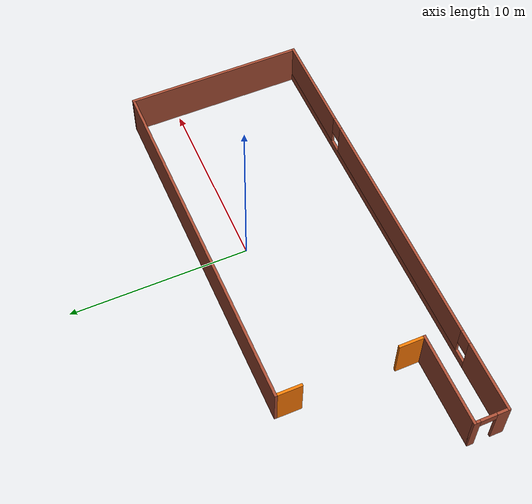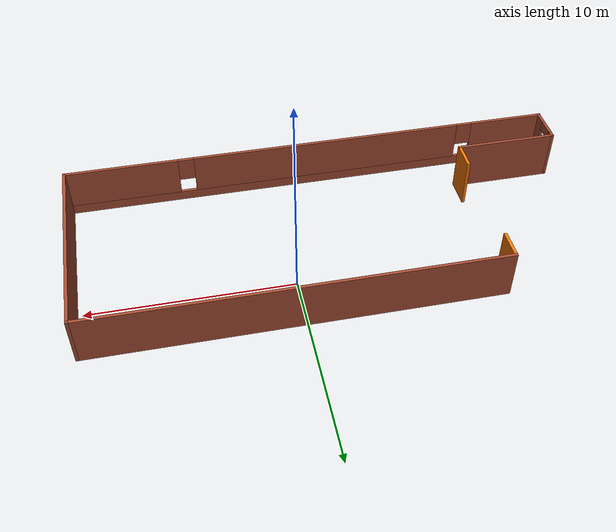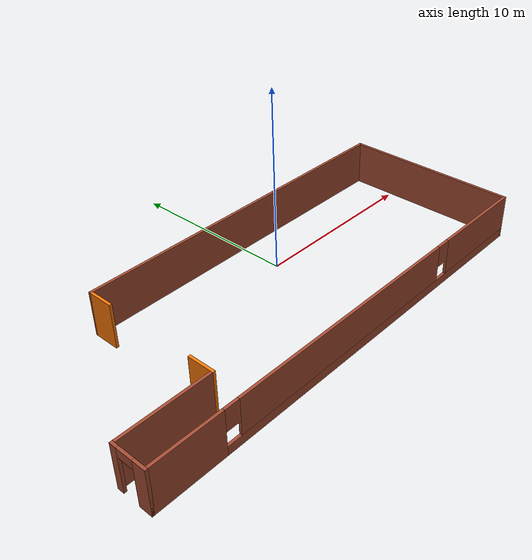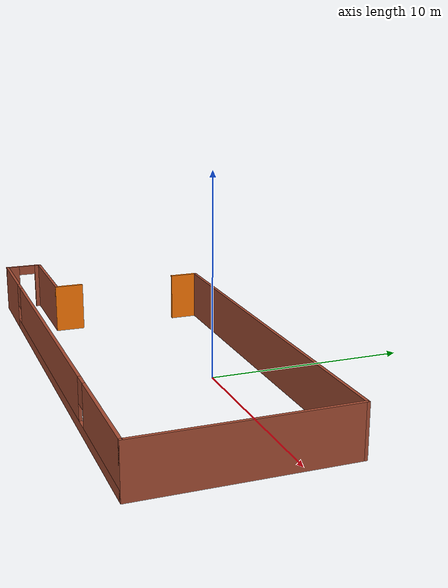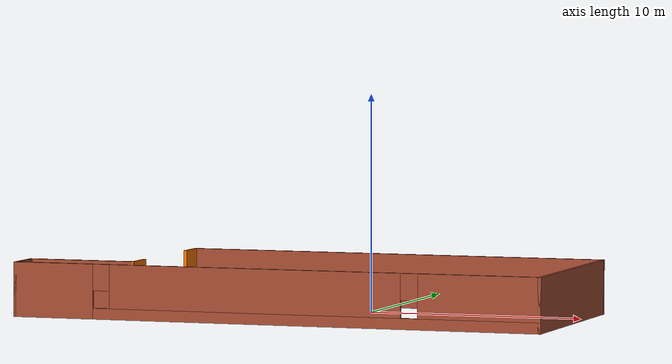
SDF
<?xml version='1.0'?>
<sdf version='1.7'>
  <model name='building'>
    <pose>-2.148 -2.399 0 0 -0 0</pose>
    <link name='Wall_0'>
      <pose>-1e-06 -4.925 0 0 -0 0</pose>
      <visual name='Wall_0_Visual_0'>
        <pose>-10.5687 0 1.25 0 -0 0</pose>
        <geometry>
          <box>
            <size>3.86253 0.15 2.5</size>
          </box>
        </geometry>
        <material>
          <script>
            <uri>file://media/materials/scripts/gazebo.material</uri>
            <name>Gazebo/Bricks</name>
          </script>
          <ambient>1 1 1 1</ambient>
        </material>
        <meta>
          <layer>0</layer>
        </meta>
      </visual>
      <collision name='Wall_0_Collision_0'>
        <geometry>
          <box>
            <size>3.86253 0.15 2.5</size>
          </box>
        </geometry>
        <pose>-10.5687 0 1.25 0 -0 0</pose>
      </collision>
      <visual name='Wall_0_Visual_1'>
        <pose>1.93126 0 0.25 0 -0 0</pose>
        <geometry>
          <box>
            <size>21.1375 0.15 0.5</size>
          </box>
        </geometry>
        <material>
          <script>
            <uri>file://media/materials/scripts/gazebo.material</uri>
            <name>Gazebo/Bricks</name>
          </script>
          <ambient>1 1 1 1</ambient>
        </material>
        <meta>
          <layer>0</layer>
        </meta>
      </visual>
      <collision name='Wall_0_Collision_1'>
        <geometry>
          <box>
            <size>21.1375 0.15 0.5</size>
          </box>
        </geometry>
        <pose>1.93126 0 0.25 0 -0 0</pose>
      </collision>
      <visual name='Wall_0_Visual_2'>
        <pose>-0.911973 0 1.5 0 -0 0</pose>
        <geometry>
          <box>
            <size>13.851 0.15 2</size>
          </box>
        </geometry>
        <material>
          <script>
            <uri>file://media/materials/scripts/gazebo.material</uri>
            <name>Gazebo/Bricks</name>
          </script>
          <ambient>1 1 1 1</ambient>
        </material>
        <meta>
          <layer>0</layer>
        </meta>
      </visual>
      <collision name='Wall_0_Collision_2'>
        <geometry>
          <box>
            <size>13.851 0.15 2</size>
          </box>
        </geometry>
        <pose>-0.911973 0 1.5 0 -0 0</pose>
      </collision>
      <visual name='Wall_0_Visual_3'>
        <pose>9.65676 0 1.5 0 -0 0</pose>
        <geometry>
          <box>
            <size>5.68647 0.15 2</size>
          </box>
        </geometry>
        <material>
          <script>
            <uri>file://media/materials/scripts/gazebo.material</uri>
            <name>Gazebo/Bricks</name>
          </script>
          <ambient>1 1 1 1</ambient>
        </material>
        <meta>
          <layer>0</layer>
        </meta>
      </visual>
      <collision name='Wall_0_Collision_3'>
        <geometry>
          <box>
            <size>5.68647 0.15 2</size>
          </box>
        </geometry>
        <pose>9.65676 0 1.5 0 -0 0</pose>
      </collision>
      <visual name='Wall_0_Visual_4'>
        <pose>-8.23747 0 1.9 0 -0 0</pose>
        <geometry>
          <box>
            <size>0.8 0.15 1.2</size>
          </box>
        </geometry>
        <material>
          <script>
            <uri>file://media/materials/scripts/gazebo.material</uri>
            <name>Gazebo/Bricks</name>
          </script>
          <ambient>1 1 1 1</ambient>
        </material>
        <meta>
          <layer>0</layer>
        </meta>
      </visual>
      <collision name='Wall_0_Collision_4'>
        <geometry>
          <box>
            <size>0.8 0.15 1.2</size>
          </box>
        </geometry>
        <pose>-8.23747 0 1.9 0 -0 0</pose>
      </collision>
      <visual name='Wall_0_Visual_5'>
        <pose>6.41353 0 1.9 0 -0 0</pose>
        <geometry>
          <box>
            <size>0.8 0.15 1.2</size>
          </box>
        </geometry>
        <material>
          <script>
            <uri>file://media/materials/scripts/gazebo.material</uri>
            <name>Gazebo/Bricks</name>
          </script>
          <ambient>1 1 1 1</ambient>
        </material>
        <meta>
          <layer>0</layer>
        </meta>
      </visual>
      <collision name='Wall_0_Collision_5'>
        <geometry>
          <box>
            <size>0.8 0.15 1.2</size>
          </box>
        </geometry>
        <pose>6.41353 0 1.9 0 -0 0</pose>
      </collision>
    </link>
    <link name='Wall_10'>
      <collision name='Wall_10_Collision'>
        <geometry>
          <box>
            <size>1.5 0.15 2.5</size>
          </box>
        </geometry>
        <pose>0 0 1.25 0 -0 0</pose>
      </collision>
      <visual name='Wall_10_Visual'>
        <pose>0 0 1.25 0 -0 0</pose>
        <geometry>
          <box>
            <size>1.5 0.15 2.5</size>
          </box>
        </geometry>
        <material>
          <script>
            <uri>file://media/materials/scripts/gazebo.material</uri>
            <name>Gazebo/Grey</name>
          </script>
          <ambient>0.996078 0.47451 0.0196078 1</ambient>
        </material>
        <meta>
          <layer>0</layer>
        </meta>
      </visual>
      <pose>-7.425 -2.4 0 0 -0 1.5708</pose>
    </link>
    <link name='Wall_2'>
      <pose>-12.425 -4 0 0 -0 1.5708</pose>
      <visual name='Wall_2_Visual_0'>
        <pose>-0.63494 0 1.25 0 -0 0</pose>
        <geometry>
          <box>
            <size>0.73012 0.15 2.5</size>
          </box>
        </geometry>
        <material>
          <script>
            <uri>file://media/materials/scripts/gazebo.material</uri>
            <name>Gazebo/Bricks</name>
          </script>
          <ambient>1 1 1 1</ambient>
        </material>
        <meta>
          <layer>0</layer>
        </meta>
      </visual>
      <collision name='Wall_2_Collision_0'>
        <geometry>
          <box>
            <size>0.73012 0.15 2.5</size>
          </box>
        </geometry>
        <pose>-0.63494 0 1.25 0 -0 0</pose>
      </collision>
      <visual name='Wall_2_Visual_1'>
        <pose>0.81506 0 1.25 0 -0 0</pose>
        <geometry>
          <box>
            <size>0.36988 0.15 2.5</size>
          </box>
        </geometry>
        <material>
          <script>
            <uri>file://media/materials/scripts/gazebo.material</uri>
            <name>Gazebo/Bricks</name>
          </script>
          <ambient>1 1 1 1</ambient>
        </material>
        <meta>
          <layer>0</layer>
        </meta>
      </visual>
      <collision name='Wall_2_Collision_1'>
        <geometry>
          <box>
            <size>0.36988 0.15 2.5</size>
          </box>
        </geometry>
        <pose>0.81506 0 1.25 0 -0 0</pose>
      </collision>
      <visual name='Wall_2_Visual_2'>
        <pose>0.18012 0 2.25 0 -0 0</pose>
        <geometry>
          <box>
            <size>0.9 0.15 0.5</size>
          </box>
        </geometry>
        <material>
          <script>
            <uri>file://media/materials/scripts/gazebo.material</uri>
            <name>Gazebo/Bricks</name>
          </script>
          <ambient>1 1 1 1</ambient>
        </material>
        <meta>
          <layer>0</layer>
        </meta>
      </visual>
      <collision name='Wall_2_Collision_2'>
        <geometry>
          <box>
            <size>0.9 0.15 0.5</size>
          </box>
        </geometry>
        <pose>0.18012 0 2.25 0 -0 0</pose>
      </collision>
    </link>
    <link name='Wall_4'>
      <collision name='Wall_4_Collision'>
        <geometry>
          <box>
            <size>10 0.15 2.5</size>
          </box>
        </geometry>
        <pose>0 0 1.25 0 -0 0</pose>
      </collision>
      <visual name='Wall_4_Visual'>
        <pose>0 0 1.25 0 -0 0</pose>
        <geometry>
          <box>
            <size>10 0.15 2.5</size>
          </box>
        </geometry>
        <material>
          <script>
            <uri>file://media/materials/scripts/gazebo.material</uri>
            <name>Gazebo/Bricks</name>
          </script>
          <ambient>1 1 1 1</ambient>
        </material>
        <meta>
          <layer>0</layer>
        </meta>
      </visual>
      <pose>12.425 -0 0 0 -0 1.5708</pose>
    </link>
    <link name='Wall_5'>
      <collision name='Wall_5_Collision'>
        <geometry>
          <box>
            <size>20 0.15 2.5</size>
          </box>
        </geometry>
        <pose>0 0 1.25 0 -0 0</pose>
      </collision>
      <visual name='Wall_5_Visual'>
        <pose>0 0 1.25 0 -0 0</pose>
        <geometry>
          <box>
            <size>20 0.15 2.5</size>
          </box>
        </geometry>
        <material>
          <script>
            <uri>file://media/materials/scripts/gazebo.material</uri>
            <name>Gazebo/Bricks</name>
          </script>
          <ambient>1 1 1 1</ambient>
        </material>
        <meta>
          <layer>0</layer>
        </meta>
      </visual>
      <pose>2.5 4.925 0 0 -0 3.14159</pose>
    </link>
    <link name='Wall_6'>
      <collision name='Wall_6_Collision'>
        <geometry>
          <box>
            <size>1.5 0.15 2.5</size>
          </box>
        </geometry>
        <pose>0 0 1.25 0 -0 0</pose>
      </collision>
      <visual name='Wall_6_Visual'>
        <pose>0 0 1.25 0 -0 0</pose>
        <geometry>
          <box>
            <size>1.5 0.15 2.5</size>
          </box>
        </geometry>
        <material>
          <script>
            <uri>file://media/materials/scripts/gazebo.material</uri>
            <name>Gazebo/Grey</name>
          </script>
          <ambient>0.996078 0.47451 0.0196078 1</ambient>
        </material>
        <meta>
          <layer>0</layer>
        </meta>
      </visual>
      <pose>-7.425 4.25 0 0 -0 -1.5708</pose>
    </link>
    <link name='Wall_8'>
      <collision name='Wall_8_Collision'>
        <geometry>
          <box>
            <size>5.15 0.15 2.5</size>
          </box>
        </geometry>
        <pose>0 0 1.25 0 -0 0</pose>
      </collision>
      <visual name='Wall_8_Visual'>
        <pose>0 0 1.25 0 -0 0</pose>
        <geometry>
          <box>
            <size>5.15 0.15 2.5</size>
          </box>
        </geometry>
        <material>
          <script>
            <uri>file://media/materials/scripts/gazebo.material</uri>
            <name>Gazebo/Bricks</name>
          </script>
          <ambient>1 1 1 1</ambient>
        </material>
        <meta>
          <layer>0</layer>
        </meta>
      </visual>
      <pose>-9.925 -3.075 0 0 -0 0</pose>
    </link>
    <static>1</static>
  </model>
</sdf>
